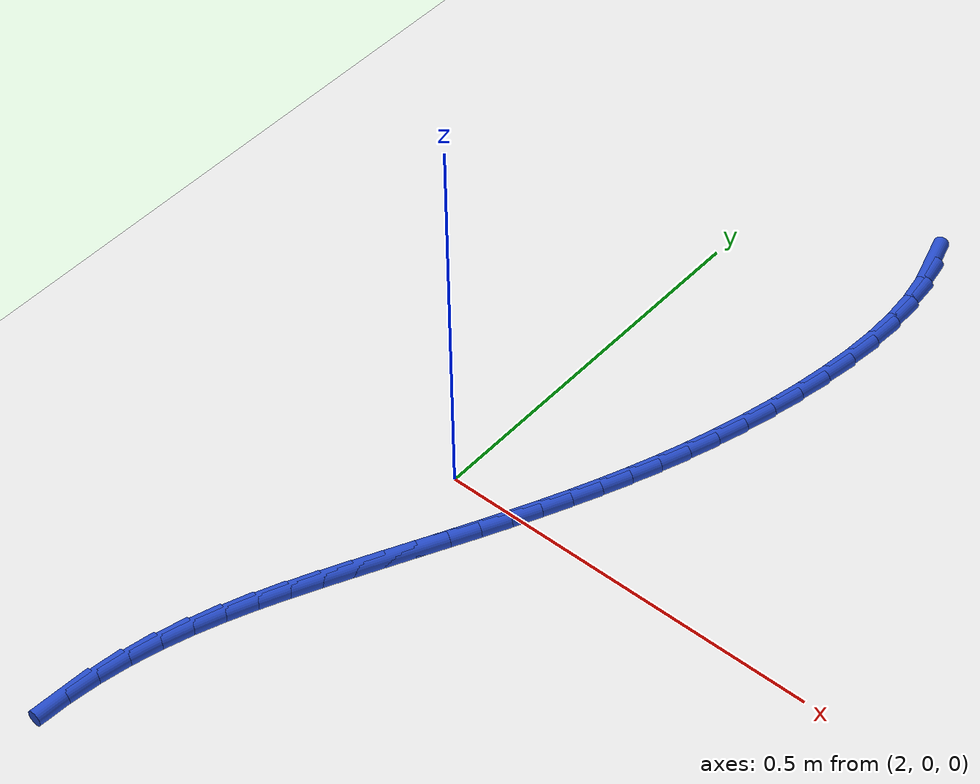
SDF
<sdf version="1.6">
 <world name="default">
  <model name="ground_plane">
   <static>1</static>
   <link name="link">
    <collision name="collision">
     <geometry><plane><normal>0 0 1</normal><size>100 100</size></plane></geometry>
     <surface><friction><ode><mu>100</mu><mu2>50</mu2></ode></friction></surface>
    </collision>
    <visual name="visual">
     <cast_shadows>0</cast_shadows>
     <geometry><plane><normal>0 0 1</normal><size>100 100</size></plane></geometry>
     <material>
      <script><uri>file://media/materials/scripts/gazebo.material</uri><name>Gazebo/WhiteGlow</name></script>
     </material>
    </visual>
   </link>
  </model>
  <model name="line">
   <link name="link_80">
    <pose>2.2240401079011187 0.6487257520499462 0.01 0 1.57 -1.2785196892378818</pose>
    <collision name="collision">
     <geometry><cylinder><radius>0.01</radius><length>0.08</length></cylinder></geometry>
    </collision>
    <visual name="visual">
     <material>
      <script><name>Gazebo/Blue</name><uri>file://media/materials/scripts/gazebo.material</uri></script>
     </material>
     <geometry><cylinder><radius>0.01</radius><length>0.08</length></cylinder></geometry>
    </visual>
   </link>
   <link name="link_81">
    <pose>2.2347865337249604 0.613010745380618 0.01 0 1.57 -1.3983475774951561</pose>
    <collision name="collision">
     <geometry><cylinder><radius>0.01</radius><length>0.08</length></cylinder></geometry>
    </collision>
    <visual name="visual">
     <material>
      <script><name>Gazebo/Blue</name><uri>file://media/materials/scripts/gazebo.material</uri></script>
     </material>
     <geometry><cylinder><radius>0.01</radius><length>0.08</length></cylinder></geometry>
    </visual>
   </link>
   <link name="link_82">
    <pose>2.241463209950975 0.5746784308420462 0.01 0 1.57 -1.4964104491704875</pose>
    <collision name="collision">
     <geometry><cylinder><radius>0.01</radius><length>0.08</length></cylinder></geometry>
    </collision>
    <visual name="visual">
     <material>
      <script><name>Gazebo/Blue</name><uri>file://media/materials/scripts/gazebo.material</uri></script>
     </material>
     <geometry><cylinder><radius>0.01</radius><length>0.08</length></cylinder></geometry>
    </visual>
   </link>
   <link name="link_83">
    <pose>2.24447386002871 0.5342796989557271 0.01 0 1.57 1.5647924129730655</pose>
    <collision name="collision">
     <geometry><cylinder><radius>0.01</radius><length>0.08</length></cylinder></geometry>
    </collision>
    <visual name="visual">
     <material>
      <script><name>Gazebo/Blue</name><uri>file://media/materials/scripts/gazebo.material</uri></script>
     </material>
     <geometry><cylinder><radius>0.01</radius><length>0.08</length></cylinder></geometry>
    </visual>
   </link>
   <link name="link_84">
    <pose>2.2442222074077143 0.49236544024315543 0.01 0 1.57 1.4983878765208627</pose>
    <collision name="collision">
     <geometry><cylinder><radius>0.01</radius><length>0.08</length></cylinder></geometry>
    </collision>
    <visual name="visual">
     <material>
      <script><name>Gazebo/Blue</name><uri>file://media/materials/scripts/gazebo.material</uri></script>
     </material>
     <geometry><cylinder><radius>0.01</radius><length>0.08</length></cylinder></geometry>
    </visual>
   </link>
   <link name="link_85">
    <pose>2.2411119755375326 0.44948654522582726 0.01 0 1.57 1.4429516082146865</pose>
    <collision name="collision">
     <geometry><cylinder><radius>0.01</radius><length>0.08</length></cylinder></geometry>
    </collision>
    <visual name="visual">
     <material>
      <script><name>Gazebo/Blue</name><uri>file://media/materials/scripts/gazebo.material</uri></script>
     </material>
     <geometry><cylinder><radius>0.01</radius><length>0.08</length></cylinder></geometry>
    </visual>
   </link>
   <link name="link_86">
    <pose>2.2355468878677143 0.4061939044252387 0.01 0 1.57 1.3961118974521172</pose>
    <collision name="collision">
     <geometry><cylinder><radius>0.01</radius><length>0.08</length></cylinder></geometry>
    </collision>
    <visual name="visual">
     <material>
      <script><name>Gazebo/Blue</name><uri>file://media/materials/scripts/gazebo.material</uri></script>
     </material>
     <geometry><cylinder><radius>0.01</radius><length>0.08</length></cylinder></geometry>
    </visual>
   </link>
   <link name="link_87">
    <pose>2.227930667847806 0.3630384083628846 0.01 0 1.57 1.3560258567866568</pose>
    <collision name="collision">
     <geometry><cylinder><radius>0.01</radius><length>0.08</length></cylinder></geometry>
    </collision>
    <visual name="visual">
     <material>
      <script><name>Gazebo/Blue</name><uri>file://media/materials/scripts/gazebo.material</uri></script>
     </material>
     <geometry><cylinder><radius>0.01</radius><length>0.08</length></cylinder></geometry>
    </visual>
   </link>
   <link name="link_88">
    <pose>2.2186670389273546 0.3205709475602609 0.01 0 1.57 1.3209903234877547</pose>
    <collision name="collision">
     <geometry><cylinder><radius>0.01</radius><length>0.08</length></cylinder></geometry>
    </collision>
    <visual name="visual">
     <material>
      <script><name>Gazebo/Blue</name><uri>file://media/materials/scripts/gazebo.material</uri></script>
     </material>
     <geometry><cylinder><radius>0.01</radius><length>0.08</length></cylinder></geometry>
    </visual>
   </link>
   <link name="link_89">
    <pose>2.208134285025945 0.2792879323599521 0.01 0 1.57 1.288247798979728</pose>
    <collision name="collision">
     <geometry><cylinder><radius>0.01</radius><length>0.08</length></cylinder></geometry>
    </collision>
    <visual name="visual">
     <material>
      <script><name>Gazebo/Blue</name><uri>file://media/materials/scripts/gazebo.material</uri></script>
     </material>
     <geometry><cylinder><radius>0.01</radius><length>0.08</length></cylinder></geometry>
    </visual>
   </link>
   <link name="link_90">
    <pose>2.196516305936243 0.2392694886044983 0.01 0 1.57 1.2570858178908029</pose>
    <collision name="collision">
     <geometry><cylinder><radius>0.01</radius><length>0.08</length></cylinder></geometry>
    </collision>
    <visual name="visual">
     <material>
      <script><name>Gazebo/Blue</name><uri>file://media/materials/scripts/gazebo.material</uri></script>
     </material>
     <geometry><cylinder><radius>0.01</radius><length>0.08</length></cylinder></geometry>
    </visual>
   </link>
   <link name="link_91">
    <pose>2.183907321304751 0.20040368707823603 0.01 0 1.57 1.2278445226093395</pose>
    <collision name="collision">
     <geometry><cylinder><radius>0.01</radius><length>0.08</length></cylinder></geometry>
    </collision>
    <visual name="visual">
     <material>
      <script><name>Gazebo/Blue</name><uri>file://media/materials/scripts/gazebo.material</uri></script>
     </material>
     <geometry><cylinder><radius>0.01</radius><length>0.08</length></cylinder></geometry>
    </visual>
   </link>
   <link name="link_92">
    <pose>2.1704010699882277 0.16257756892732522 0.01 0 1.57 1.2008466530638386</pose>
    <collision name="collision">
     <geometry><cylinder><radius>0.01</radius><length>0.08</length></cylinder></geometry>
    </collision>
    <visual name="visual">
     <material>
      <script><name>Gazebo/Blue</name><uri>file://media/materials/scripts/gazebo.material</uri></script>
     </material>
     <geometry><cylinder><radius>0.01</radius><length>0.08</length></cylinder></geometry>
    </visual>
   </link>
   <link name="link_93">
    <pose>2.1560912908434333 0.12567817529792585 0.01 0 1.57 1.1763856691084777</pose>
    <collision name="collision">
     <geometry><cylinder><radius>0.01</radius><length>0.08</length></cylinder></geometry>
    </collision>
    <visual name="visual">
     <material>
      <script><name>Gazebo/Blue</name><uri>file://media/materials/scripts/gazebo.material</uri></script>
     </material>
     <geometry><cylinder><radius>0.01</radius><length>0.08</length></cylinder></geometry>
    </visual>
   </link>
   <link name="link_94">
    <pose>2.141071722727126 0.0895925473361964 0.01 0 1.57 1.1547208335745252</pose>
    <collision name="collision">
     <geometry><cylinder><radius>0.01</radius><length>0.08</length></cylinder></geometry>
    </collision>
    <visual name="visual">
     <material>
      <script><name>Gazebo/Blue</name><uri>file://media/materials/scripts/gazebo.material</uri></script>
     </material>
     <geometry><cylinder><radius>0.01</radius><length>0.08</length></cylinder></geometry>
    </visual>
   </link>
   <link name="link_95">
    <pose>2.125436104496065 0.05420772618829696 0.01 0 1.57 1.1360742914061346</pose>
    <collision name="collision">
     <geometry><cylinder><radius>0.01</radius><length>0.08</length></cylinder></geometry>
    </collision>
    <visual name="visual">
     <material>
      <script><name>Gazebo/Blue</name><uri>file://media/materials/scripts/gazebo.material</uri></script>
     </material>
     <geometry><cylinder><radius>0.01</radius><length>0.08</length></cylinder></geometry>
    </visual>
   </link>
   <link name="link_96">
    <pose>2.109278175007009 0.01941075300038684 0.01 0 1.57 1.1206299058147184</pose>
    <collision name="collision">
     <geometry><cylinder><radius>0.01</radius><length>0.08</length></cylinder></geometry>
    </collision>
    <visual name="visual">
     <material>
      <script><name>Gazebo/Blue</name><uri>file://media/materials/scripts/gazebo.material</uri></script>
     </material>
     <geometry><cylinder><radius>0.01</radius><length>0.08</length></cylinder></geometry>
    </visual>
   </link>
   <link name="link_97">
    <pose>2.0926916731167178 -0.014911331081374386 0.01 0 1.57 1.1085334491658894</pose>
    <collision name="collision">
     <geometry><cylinder><radius>0.01</radius><length>0.08</length></cylinder></geometry>
    </collision>
    <visual name="visual">
     <material>
      <script><name>Gazebo/Blue</name><uri>file://media/materials/scripts/gazebo.material</uri></script>
     </material>
     <geometry><cylinder><radius>0.01</radius><length>0.08</length></cylinder></geometry>
    </visual>
   </link>
   <link name="link_98">
    <pose>2.0757703376819503 -0.04887148491082658 0.01 0 1.57 1.0998936662576442</pose>
    <collision name="collision">
     <geometry><cylinder><radius>0.01</radius><length>0.08</length></cylinder></geometry>
    </collision>
    <visual name="visual">
     <material>
      <script><name>Gazebo/Blue</name><uri>file://media/materials/scripts/gazebo.material</uri></script>
     </material>
     <geometry><cylinder><radius>0.01</radius><length>0.08</length></cylinder></geometry>
    </visual>
   </link>
   <link name="link_99">
    <pose>2.058607907559465 -0.08258266734181166 0.01 0 1.57 1.0947837256306938</pose>
    <collision name="collision">
     <geometry><cylinder><radius>0.01</radius><length>0.08</length></cylinder></geometry>
    </collision>
    <visual name="visual">
     <material>
      <script><name>Gazebo/Blue</name><uri>file://media/materials/scripts/gazebo.material</uri></script>
     </material>
     <geometry><cylinder><radius>0.01</radius><length>0.08</length></cylinder></geometry>
    </visual>
   </link>
   <link name="link_100">
    <pose>2.0412981216060215 -0.11615783722816944 0.01 0 1.57 1.0932426349003754</pose>
    <collision name="collision">
     <geometry><cylinder><radius>0.01</radius><length>0.08</length></cylinder></geometry>
    </collision>
    <visual name="visual">
     <material>
      <script><name>Gazebo/Blue</name><uri>file://media/materials/scripts/gazebo.material</uri></script>
     </material>
     <geometry><cylinder><radius>0.01</radius><length>0.08</length></cylinder></geometry>
    </visual>
   </link>
   <link name="link_101">
    <pose>2.0239347186783787 -0.1497099534237405 0.01 0 1.57 1.0952762995646304</pose>
    <collision name="collision">
     <geometry><cylinder><radius>0.01</radius><length>0.08</length></cylinder></geometry>
    </collision>
    <visual name="visual">
     <material>
      <script><name>Gazebo/Blue</name><uri>file://media/materials/scripts/gazebo.material</uri></script>
     </material>
     <geometry><cylinder><radius>0.01</radius><length>0.08</length></cylinder></geometry>
    </visual>
   </link>
   <link name="link_102">
    <pose>2.0066114376332953 -0.18335197478236526 0.01 0 1.57 1.1008722566479714</pose>
    <collision name="collision">
     <geometry><cylinder><radius>0.01</radius><length>0.08</length></cylinder></geometry>
    </collision>
    <visual name="visual">
     <material>
      <script><name>Gazebo/Blue</name><uri>file://media/materials/scripts/gazebo.material</uri></script>
     </material>
     <geometry><cylinder><radius>0.01</radius><length>0.08</length></cylinder></geometry>
    </visual>
   </link>
   <link name="link_103">
    <pose>1.9894225619079593 -0.2171969802036897 0.01 0 1.57 1.1119086825090547</pose>
    <collision name="collision">
     <geometry><cylinder><radius>0.01</radius><length>0.08</length></cylinder></geometry>
    </collision>
    <visual name="visual">
     <material>
      <script><name>Gazebo/Blue</name><uri>file://media/materials/scripts/gazebo.material</uri></script>
     </material>
     <geometry><cylinder><radius>0.01</radius><length>0.08</length></cylinder></geometry>
    </visual>
   </link>
   <link name="link_104">
    <pose>1.972536707884199 -0.2513744343363528 0.01 0 1.57 1.1321652132727875</pose>
    <collision name="collision">
     <geometry><cylinder><radius>0.01</radius><length>0.08</length></cylinder></geometry>
    </collision>
    <visual name="visual">
     <material>
      <script><name>Gazebo/Blue</name><uri>file://media/materials/scripts/gazebo.material</uri></script>
     </material>
     <geometry><cylinder><radius>0.01</radius><length>0.08</length></cylinder></geometry>
    </visual>
   </link>
   <link name="link_105">
    <pose>1.9562716348533002 -0.28604667847998816 0.01 0 1.57 1.161945383800658</pose>
    <collision name="collision">
     <geometry><cylinder><radius>0.01</radius><length>0.08</length></cylinder></geometry>
    </collision>
    <visual name="visual">
     <material>
      <script><name>Gazebo/Blue</name><uri>file://media/materials/scripts/gazebo.material</uri></script>
     </material>
     <geometry><cylinder><radius>0.01</radius><length>0.08</length></cylinder></geometry>
    </visual>
   </link>
   <link name="link_106">
    <pose>1.9409629237839754 -0.32137998249557664 0.01 0 1.57 1.2010033020124566</pose>
    <collision name="collision">
     <geometry><cylinder><radius>0.01</radius><length>0.08</length></cylinder></geometry>
    </collision>
    <visual name="visual">
     <material>
      <script><name>Gazebo/Blue</name><uri>file://media/materials/scripts/gazebo.material</uri></script>
     </material>
     <geometry><cylinder><radius>0.01</radius><length>0.08</length></cylinder></geometry>
    </visual>
   </link>
   <link name="link_107">
    <pose>1.9269461556449405 -0.3575406162440974 0.01 0 1.57 1.2489367763086945</pose>
    <collision name="collision">
     <geometry><cylinder><radius>0.01</radius><length>0.08</length></cylinder></geometry>
    </collision>
    <visual name="visual">
     <material>
      <script><name>Gazebo/Blue</name><uri>file://media/materials/scripts/gazebo.material</uri></script>
     </material>
     <geometry><cylinder><radius>0.01</radius><length>0.08</length></cylinder></geometry>
    </visual>
   </link>
   <link name="link_108">
    <pose>1.9145569114049088 -0.3946948495865296 0.01 0 1.57 1.3051070264622184</pose>
    <collision name="collision">
     <geometry><cylinder><radius>0.01</radius><length>0.08</length></cylinder></geometry>
    </collision>
    <visual name="visual">
     <material>
      <script><name>Gazebo/Blue</name><uri>file://media/materials/scripts/gazebo.material</uri></script>
     </material>
     <geometry><cylinder><radius>0.01</radius><length>0.08</length></cylinder></geometry>
    </visual>
   </link>
   <link name="link_109">
    <pose>1.9041307720325944 -0.43300895238385306 0.01 0 1.57 1.3685685842215822</pose>
    <collision name="collision">
     <geometry><cylinder><radius>0.01</radius><length>0.08</length></cylinder></geometry>
    </collision>
    <visual name="visual">
     <material>
      <script><name>Gazebo/Blue</name><uri>file://media/materials/scripts/gazebo.material</uri></script>
     </material>
     <geometry><cylinder><radius>0.01</radius><length>0.08</length></cylinder></geometry>
    </visual>
   </link>
   <link name="link_110">
    <pose>1.8960033184967129 -0.47264919449704745 0.01 0 1.57 1.437733218107431</pose>
    <collision name="collision">
     <geometry><cylinder><radius>0.01</radius><length>0.08</length></cylinder></geometry>
    </collision>
    <visual name="visual">
     <material>
      <script><name>Gazebo/Blue</name><uri>file://media/materials/scripts/gazebo.material</uri></script>
     </material>
     <geometry><cylinder><radius>0.01</radius><length>0.08</length></cylinder></geometry>
    </visual>
   </link>
   <link name="link_111">
    <pose>1.8904984982816746 -0.5137747385293756 0.01 0 1.57 1.5016411264757008</pose>
    <collision name="collision">
     <geometry><cylinder><radius>0.01</radius><length>0.08</length></cylinder></geometry>
    </collision>
    <visual name="visual">
     <material>
      <script><name>Gazebo/Blue</name><uri>file://media/materials/scripts/gazebo.material</uri></script>
     </material>
     <geometry><cylinder><radius>0.01</radius><length>0.08</length></cylinder></geometry>
    </visual>
   </link>
  </model>
 </world>
</sdf>
